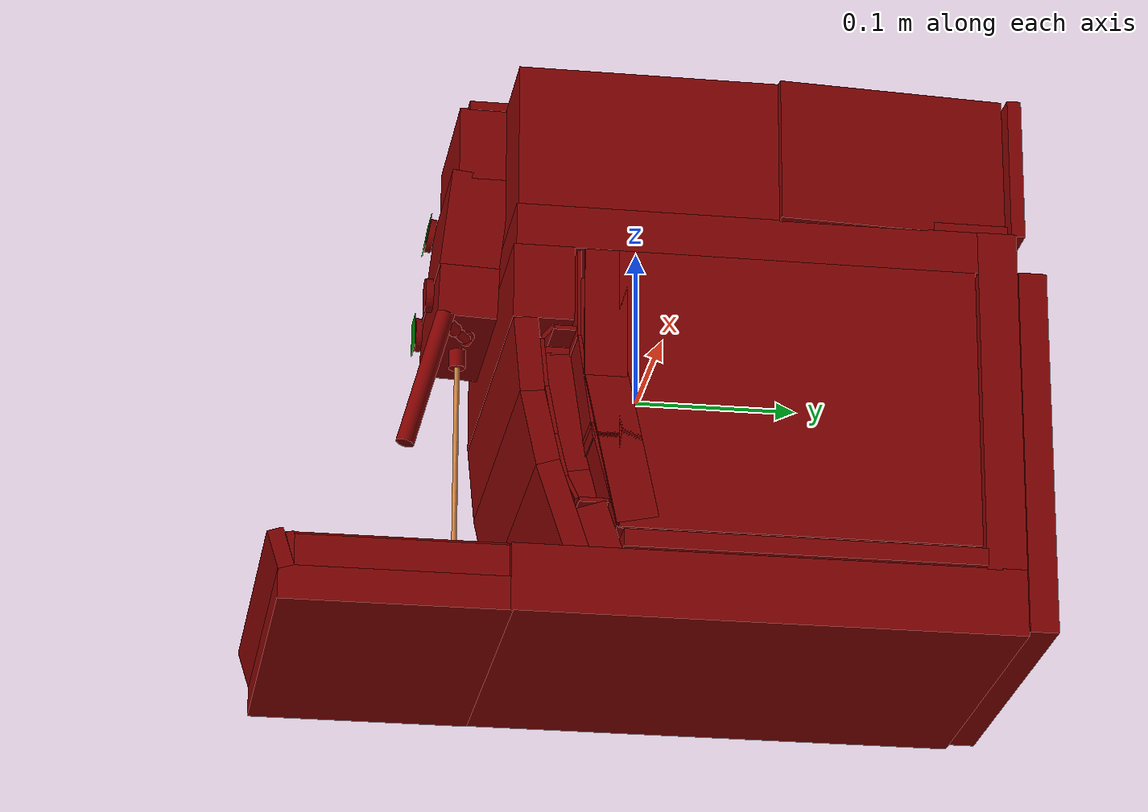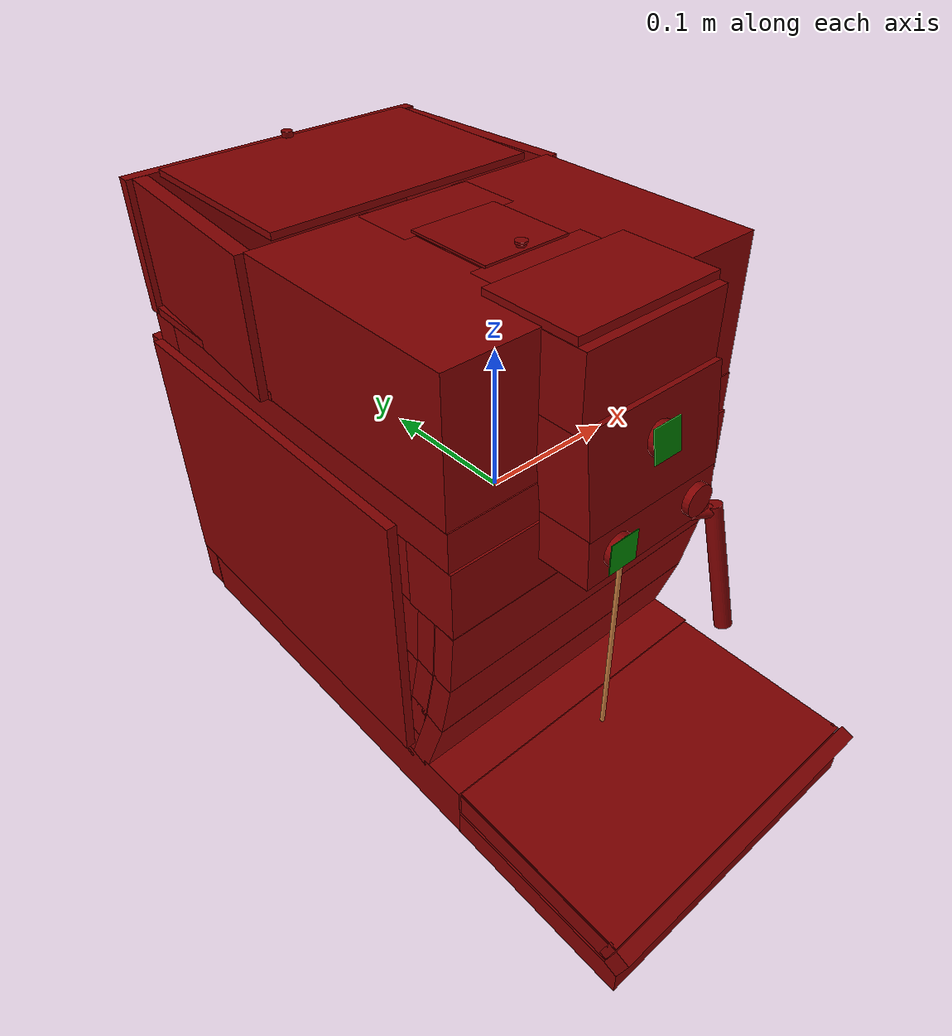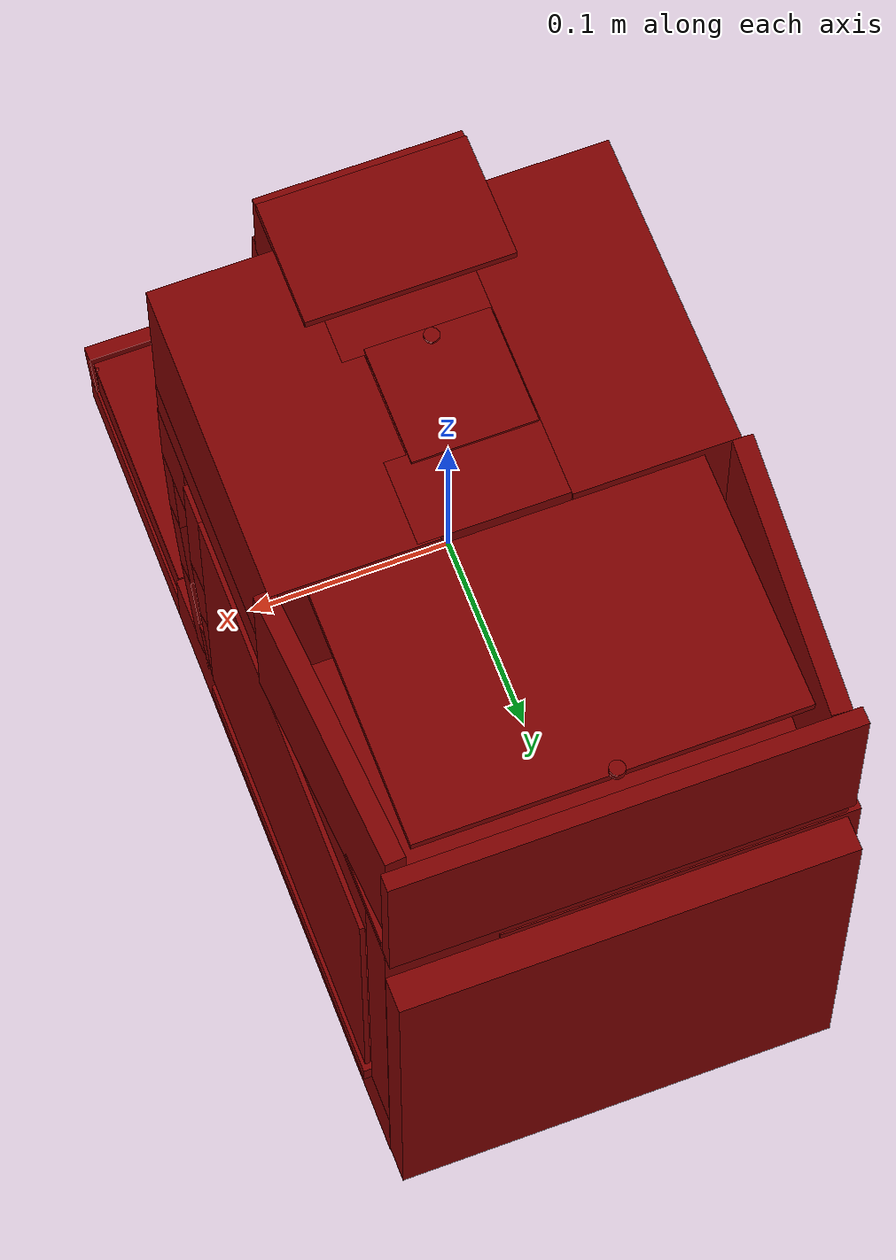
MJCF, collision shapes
<?xml version='1.0' encoding='UTF-8'?>
<mujoco model="model">
  <compiler angle="radian"/>
  <asset>
    <mesh file="visuals/Body001.obj" name="Body001_vis"/>
    <mesh file="visuals/Button001.obj" name="Button001_vis"/>
    <mesh file="visuals/Button002.obj" name="Button002_vis"/>
    <mesh file="visuals/Button003.obj" name="Button003_vis"/>
    <mesh file="visuals/Container001_Clear.obj" name="Container001_Clear_vis"/>
    <mesh file="visuals/Lever001.obj" name="Lever001_vis"/>
    <mesh file="visuals/Lid001.obj" name="Lid001_vis"/>
    <mesh file="visuals/Lid002.obj" name="Lid002_vis"/>
    <mesh file="visuals/Lid003.obj" name="Lid003_vis"/>
    <texture file="visuals/T_BC001.png" name="Body001_material" type="2d"/>
    <material name="Body001_material" rgba="1 1 1 1.0" texture="Body001_material" shininess="-1023.0" specular="0.3103448502657381"/>
    <texture file="visuals/T_BC001.png" name="Button001_material" type="2d"/>
    <material name="Button001_material" rgba="1 1 1 1.0" texture="Button001_material" shininess="-1023.0" specular="0.3103448502657381"/>
    <texture file="visuals/T_BC001.png" name="Button002_material" type="2d"/>
    <material name="Button002_material" rgba="1 1 1 1.0" texture="Button002_material" shininess="-1023.0" specular="0.3103448502657381"/>
    <texture file="visuals/T_BC001.png" name="Button003_material" type="2d"/>
    <material name="Button003_material" rgba="1 1 1 1.0" texture="Button003_material" shininess="-1023.0" specular="0.3103448502657381"/>
    <material name="Container001_Clear_material" rgba="0.5 0.5 0.5 0.10000000149011612" shininess="-1023.0" specular="0.3103448502657381"/>
    <texture file="visuals/T_BC001.png" name="Lever001_material" type="2d"/>
    <material name="Lever001_material" rgba="1 1 1 1.0" texture="Lever001_material" shininess="-1023.0" specular="0.3103448502657381"/>
    <texture file="visuals/T_BC001.png" name="Lid001_material" type="2d"/>
    <material name="Lid001_material" rgba="1 1 1 1.0" texture="Lid001_material" shininess="-1023.0" specular="0.3103448502657381"/>
    <texture file="visuals/T_BC001.png" name="Lid002_material" type="2d"/>
    <material name="Lid002_material" rgba="1 1 1 1.0" texture="Lid002_material" shininess="-1023.0" specular="0.3103448502657381"/>
    <texture file="visuals/T_BC001.png" name="Lid003_material" type="2d"/>
    <material name="Lid003_material" rgba="1 1 1 1.0" texture="Lid003_material" shininess="-1023.0" specular="0.3103448502657381"/>
  </asset>
  <default>
    <default class="visual">
      <geom conaffinity="0" contype="0" group="1" type="mesh"/>
    </default>
    <default class="collision">
      <geom group="0" rgba="0.5 0 0 0.5"/>
    </default>
    <default class="spawn">
      <geom group="0" rgba="1 1 1 0.5" contype="0" conaffinity="0"/>
      <site group="0" rgba="1 1 1 0.5"/>
    </default>
    <default class="region">
      <geom group="1" conaffinity="0" contype="0" rgba="0 1 0 0"/>
    </default>
  </default>
  <worldbody>
    <body>
      <body name="object">
        <geom class="collision" type="box" pos="-0.001246 -0.131342 0.105351" size="0.010432046838104725 0.010432046838104725 0.00023479762603528798" quat="0.7657781839370728 0.6431047916412354 0.0 0.0" name="start_button_1" rgba="0.0 0.5 0 0.5"/>
        <geom class="collision" type="box" pos="-0.031657 -0.135325 0.050375" size="0.010432046838104725 0.010432046838104725 0.00023871650046203285" quat="0.7071067094802856 0.7071068286895752 0.0 0.0" name="start_button_2" rgba="0.0 0.5 0 0.5"/>
        <site rgba="0 0 0 0" size="0.009999999776482582 0.009999999776482582" pos="-0.002287 -0.111417 -0.136497" name="receptacle_place_site"/>
        <site type="cylinder" rgba="0.8 0.5 0.25 1" size="0.0015930539229884744 0.08924613147974014" pos="-0.002133 -0.111189 -0.068851" name="coffee_liquid"/>
        <geom mesh="Body001_vis" type="mesh" solimp="0.998 0.998 0.001" solref="0.001 1" density="100" friction="0.95 0.3 0.1" class="visual" material="Body001_material"/>
        <geom class="collision" type="box" pos="-0.000000 0.063121 -0.157252" size="0.11195165663957596 0.1536671668291092 0.02068617008626461" quat="1.0 0.0 0.0 0.0"/>
        <geom class="collision" type="box" pos="-0.000000 -0.157323 -0.167830" size="0.11194975674152374 0.06829345226287842 0.010334345512092113" quat="1.0 0.0 0.0 0.0"/>
        <geom class="collision" type="box" pos="-0.000000 -0.224371 -0.147543" size="0.11195165663957596 0.011879979632794857 0.004888792522251606" quat="0.8053767085075378 -0.5927633047103882 -1.316199202782537e-16 -6.994547234390643e-24"/>
        <geom class="collision" type="box" pos="-0.000000 0.204685 -0.028745" size="0.11195165663957596 0.012152980081737041 0.10867776721715927" quat="1.0 0.0 0.0 0.0"/>
        <geom class="collision" type="box" pos="0.002009 0.083867 -0.131026" size="0.11396069079637527 0.10867775976657867 0.005318571347743273" quat="1.0 0.0 0.0 0.0"/>
        <geom class="collision" type="box" pos="0.000000 0.051547 0.066183" size="0.11195165663957596 0.14099763333797455 0.013451976701617241" quat="1.0 0.0 0.0 0.0"/>
        <geom class="collision" type="box" pos="0.000000 -0.072612 0.029596" size="0.11195165663957596 0.0183626189827919 0.023557720705866814" quat="1.0 0.0 0.0 0.0"/>
        <geom class="collision" type="box" pos="-0.000000 -0.081293 -0.017419" size="0.11195165663957596 0.02345963940024376 0.007367161102592945" quat="0.7399609088897705 -0.6726498603820801 -1.4895644801217288e-16 4.444539141957276e-19"/>
        <geom class="collision" type="box" pos="0.000000 -0.074349 -0.062909" size="0.11195165663957596 0.02345964126288891 0.007367161102592945" quat="0.7782642841339111 -0.627936840057373 -1.3905500343568453e-16 4.673307831080121e-19"/>
        <geom class="collision" type="box" pos="-0.000000 -0.060762 -0.112588" size="0.11195165663957596 0.02864706702530384 0.007367161102592945" quat="0.8100221753120422 -0.586399257183075 -1.2985674178920506e-16 4.862973624696053e-19"/>
        <geom class="collision" type="box" pos="-0.000000 -0.039556 -0.126241" size="0.11195165663957596 0.01639576442539692 0.010064381174743176" quat="0.812647819519043 -0.5827551484107971 -1.2904978408826773e-16 4.878807929571849e-19"/>
        <geom class="collision" type="box" pos="-0.030698 0.085286 -0.034274" size="0.08770933002233505 0.13229043781757355 0.09314877539873123" quat="1.0 0.0 0.0 0.0"/>
        <geom class="collision" type="box" pos="-0.026478 -0.065689 -0.016568" size="0.08547347784042358 0.02345963940024376 0.007367161102592945" quat="0.7399609088897705 -0.6726498603820801 -1.4895644801217288e-16 4.444539141957276e-19"/>
        <geom class="collision" type="box" pos="-0.026478 -0.058744 -0.062057" size="0.08547347784042358 0.02345964126288891 0.007367161102592945" quat="0.7782642841339111 -0.627936840057373 -1.3905500343568453e-16 4.673307831080121e-19"/>
        <geom class="collision" type="box" pos="-0.026478 -0.049484 -0.102841" size="0.08547347784042358 0.02345964126288891 0.007367161102592945" quat="0.7782642841339111 -0.627936840057373 -1.3905500343568453e-16 4.673307831080121e-19"/>
        <geom class="collision" type="box" pos="-0.026478 -0.051504 -0.015189" size="0.08547347784042358 0.02345963940024376 0.007367161102592945" quat="0.7399609088897705 -0.6726498603820801 -1.4895644801217288e-16 4.444539141957276e-19"/>
        <geom class="collision" type="box" pos="-0.026478 -0.044559 -0.060678" size="0.08547347784042358 0.02345964126288891 0.007367161102592945" quat="0.7782642841339111 -0.627936840057373 -1.3905500343568453e-16 4.673307831080121e-19"/>
        <geom class="collision" type="box" pos="-0.026478 -0.053206 0.030433" size="0.08547347784042358 0.02345963940024376 0.007367160636931658" quat="0.7027764320373535 -0.7114107608795166 -1.3989560422649562e-16 1.6461407041785034e-17"/>
        <geom class="collision" type="box" pos="0.071459 -0.007446 0.117448" size="0.04049147665500641 0.0812218189239502 0.05293311923742294" quat="1.0 0.0 0.0 0.0"/>
        <geom class="collision" type="box" pos="0.000000 -0.079108 0.171733" size="0.05102960392832756 0.03249482810497284 0.0028701755218207836" quat="1.0 0.0 0.0 0.0"/>
        <geom class="collision" type="box" pos="-0.000358 -0.101847 0.145904" size="0.051004067063331604 0.015679894015192986 0.02354324236512184" quat="1.0 0.0 0.0 0.0"/>
        <geom class="collision" type="box" pos="-0.000358 -0.106976 0.093557" size="0.051004067063331604 0.032320212572813034 0.018212758004665375" quat="0.6663897633552551 -0.7456035614013672 -1.484139631141259e-16 1.7188495491496695e-17"/>
        <geom class="collision" type="box" pos="-0.000358 -0.110586 0.046731" size="0.051004067063331604 0.01664959453046322 0.018212758004665375" quat="0.6930869817733765 -0.7208539843559265 -1.5432706041423877e-16 5.7490686254145216e-18"/>
        <geom class="collision" type="cylinder" pos="-0.002263 -0.111021 0.023067" size="0.005195016972720623 0.0056921616196632385" quat="1.0 0.0 0.0 0.0"/>
        <geom class="collision" type="box" pos="-0.000000 0.226130 -0.060059" size="0.11195136606693268 0.00878219399601221 0.11500246077775955" quat="1.0 0.0 0.0 0.0"/>
        <geom class="collision" type="box" pos="-0.071532 -0.007446 0.117448" size="0.04034026339650154 0.08122221380472183 0.05293339490890503" quat="1.0 0.0 0.0 0.0"/>
        <geom class="collision" type="box" pos="0.001347 0.051081 0.117448" size="0.040340274572372437 0.021578723564743996 0.05293341353535652" quat="1.0 0.0 0.0 0.0"/>
        <geom class="collision" type="box" pos="0.001347 -0.045498 0.117448" size="0.04034028947353363 0.021578731015324593 0.052933432161808014" quat="1.0 0.0 0.0 0.0"/>
        <geom class="collision" type="box" pos="0.000000 0.003001 0.152437" size="0.02961600571870804 0.02676309645175934 0.003558617550879717" quat="1.0 0.0 0.0 0.0"/>
        <geom class="collision" type="box" pos="-0.000130 0.218300 0.124463" size="0.11183004826307297 0.00431686919182539 0.04551549628376961" quat="1.0 0.0 0.0 0.0"/>
        <geom class="collision" type="box" pos="-0.107447 0.143685 0.124463" size="0.005043792072683573 0.07020445168018341 0.04551549628376961" quat="0.9993990063667297 0.0 -0.0 -0.034664370119571686"/>
        <geom class="collision" type="box" pos="0.108405 0.140536 0.124463" size="0.005043792072683573 0.07020445168018341 0.04551549628376961" quat="0.9993990063667297 0.0 0.0 0.03466436639428139"/>
        <geom class="collision" type="box" pos="-0.000130 0.141049 0.081965" size="0.11183004826307297 0.07070321589708328 0.0030179477762430906" quat="1.0 0.0 0.0 0.0"/>
        <body name="Button001">
          <joint axis="0.0 1.0 0.0" pos="0.031291 -0.131227 0.050375" limited="true" name="Button001_joint" range="0.0 0.003" type="slide" damping="1" frictionloss="1" armature=".01" stiffness="0.05" springref="-0.1"/>
          <geom mesh="Button001_vis" type="mesh" solimp="0.998 0.998 0.001" solref="0.001 1" density="100" friction="0.95 0.3 0.1" class="visual" material="Button001_material"/>
          <geom class="collision" type="cylinder" pos="0.031316 -0.133208 0.050375" size="0.010432046838104725 0.0023561641573905945" quat="0.7071067094802856 0.7071068286895752 0.0 0.0"/>
        </body>
        <body name="Button002">
          <joint axis="0.0 1.0 0.0" pos="-0.031663 -0.131108 0.050277" limited="true" name="Button002_joint" range="0.0 0.003" type="slide" damping="1" frictionloss="1" armature=".01" stiffness="0.05" springref="-0.1"/>
          <geom mesh="Button002_vis" type="mesh" solimp="0.998 0.998 0.001" solref="0.001 1" density="100" friction="0.95 0.3 0.1" class="visual" material="Button002_material"/>
          <geom class="collision" type="cylinder" pos="-0.031657 -0.132821 0.050375" size="0.010432046838104725 0.00196964293718338" quat="0.7071067094802856 0.7071068286895752 0.0 0.0"/>
        </body>
        <body name="Button003">
          <joint axis="0.0 0.9853023290634155 -0.17081961035728455" pos="-0.001004 -0.127252 0.104497" limited="true" name="Button003_joint" range="0.0 0.003" type="slide" damping="1" frictionloss="1" armature=".01" stiffness="0.05" springref="-0.1"/>
          <geom mesh="Button003_vis" type="mesh" solimp="0.998 0.998 0.001" solref="0.001 1" density="100" friction="0.95 0.3 0.1" class="visual" material="Button003_material"/>
          <geom class="collision" type="cylinder" pos="-0.001246 -0.128870 0.104917" size="0.010432046838104725 0.0019674296490848064" quat="0.7657781839370728 0.6431047916412354 0.0 0.0"/>
        </body>
        <body name="Container001_Clear">
          <joint axis="1.0 0.0 0.0" pos="0.092067 0.058380 -0.035897" limited="true" name="Container001_Clear_joint" range="0.0 0.2" type="slide" damping="1" frictionloss="1" armature=".01" stiffness="0.05"/>
          <geom mesh="Container001_Clear_vis" type="mesh" solimp="0.998 0.998 0.001" solref="0.001 1" density="100" friction="0.95 0.3 0.1" class="visual" material="Container001_Clear_material"/>
          <geom class="collision" type="box" pos="0.067472 0.081725 -0.034906" size="0.0012893963139504194 0.10880670696496964 0.08657684922218323" quat="1.0 0.0 0.0 0.0"/>
          <geom class="collision" type="box" pos="0.112971 0.081134 -0.036100" size="0.0012893963139504194 0.1088065505027771 0.08777087926864624" quat="1.0 0.0 0.0 0.0"/>
          <geom class="collision" type="box" pos="0.088389 0.189621 -0.034906" size="0.021932460367679596 0.0012893973616883159 0.08657684922218323" quat="1.0 0.0 0.0 0.0"/>
          <geom class="collision" type="box" pos="0.112971 -0.035661 0.010972" size="0.0012893963139504194 0.012768151238560677 0.040536943823099136" quat="1.0 0.0 0.0 0.0"/>
          <geom class="collision" type="box" pos="0.112971 -0.027680 -0.065220" size="0.0012893963139504194 0.012768151238560677 0.040536943823099136" quat="0.9948450922966003 0.10140614956617355 2.2516686763028417e-17 9.573317164694347e-25"/>
          <geom class="collision" type="box" pos="0.067119 -0.035661 0.011970" size="0.0012893963139504194 0.012768151238560677 0.040536943823099136" quat="1.0 0.0 0.0 0.0"/>
          <geom class="collision" type="box" pos="0.067119 -0.026088 -0.072950" size="0.0012893963139504194 0.012768151238560677 0.04842919856309891" quat="0.9948450922966003 0.10140614956617355 2.2516686763028417e-17 9.573317164694347e-25"/>
          <geom class="collision" type="box" pos="0.112971 -0.026211 -0.072349" size="0.0012893963139504194 0.012768151238560677 0.04781608283519745" quat="0.9948450922966003 0.10140614956617355 2.2516686763028417e-17 9.573317164694347e-25"/>
          <geom class="collision" type="box" pos="0.088389 -0.051341 0.023806" size="0.021932460367679596 0.0010894195875152946 0.028150122612714767" quat="1.0 0.0 0.0 0.0"/>
          <geom class="collision" type="box" pos="0.088389 -0.046316 -0.035464" size="0.0010894185397773981 0.021932460367679596 0.03273638337850571" quat="0.7053433060646057 0.04990704730153084 0.04990704357624054 -0.70534348487854"/>
          <geom class="collision" type="box" pos="0.088389 -0.035371 -0.089919" size="0.0010894185397773981 0.021932460367679596 0.03273638337850571" quat="0.701687216758728 0.08737853169441223 0.08737853914499283 -0.7016872763633728"/>
          <geom class="collision" type="box" pos="0.089396 0.081243 -0.121979" size="0.020589197054505348 0.1095348373055458 0.0003066382196266204" quat="1.0 0.0 0.0 0.0"/>
          <geom class="collision" type="box" pos="0.078049 0.130681 -0.076029" size="0.0091010220348835 0.018342208117246628 0.04625656083226204" quat="1.0 0.0 0.0 0.0"/>
          <geom class="collision" type="box" pos="0.077664 -0.055872 -0.039668" size="0.0012893963139504194 0.012768150307238102 0.03808744251728058" quat="0.9969019889831543 0.07865401357412338 1.7464712604724077e-17 -5.921095291280288e-24"/>
          <geom class="collision" type="box" pos="0.077664 -0.061166 -0.000015" size="0.0012893963139504194 0.010859214700758457 0.003424856113269925" quat="0.9990853071212769 0.04276217520236969 9.495108644183923e-18 -1.11250742100867e-23"/>
          <geom class="collision" type="box" pos="0.077664 -0.047794 -0.088281" size="0.0012893963139504194 0.010859215632081032 0.01135159656405449" quat="0.9964436888694763 0.08426135778427124 1.8709778245293994e-17 -1.0946332528459912e-23"/>
          <geom class="collision" type="box" pos="0.077664 -0.041738 -0.102488" size="0.0012893963139504194 0.010859215632081032 0.0034083090722560883" quat="0.9999037981033325 -0.013872681185603142 -3.080352979132399e-18 -6.3957189769328464e-24"/>
          <geom class="collision" type="box" pos="0.077664 -0.041738 -0.099255" size="0.0012893963139504194 0.010859215632081032 0.0034083090722560883" quat="0.9999037981033325 -0.013872681185603142 -3.080352979132399e-18 -6.3957189769328464e-24"/>
          <geom class="collision" type="box" pos="0.091225 -0.059411 0.002931" size="0.015479560010135174 0.007000826299190521 0.0013459905749186873" quat="1.0 0.0 0.0 0.0"/>
          <geom class="collision" type="box" pos="0.091225 -0.059411 0.002931" size="0.015479560010135174 0.007000826299190521 0.0013459891779348254" quat="1.0 0.0 0.0 0.0"/>
          <geom class="collision" type="box" pos="0.091225 -0.069446 -0.000597" size="0.0012893963139504194 0.005344013683497906 0.0154795590788126" quat="0.6386833190917969 0.3034527599811554 0.6386833786964417 0.3034527599811554"/>
          <geom class="collision" type="box" pos="0.091225 -0.071556 -0.020060" size="0.0012893963139504194 0.015372076071798801 0.0154795590788126" quat="0.4742617607116699 0.5244766473770142 0.4742617905139923 0.5244766473770142"/>
          <geom class="collision" type="box" pos="0.091225 -0.066937 -0.050346" size="0.0012893963139504194 0.015372076071798801 0.0154795590788126" quat="0.4516051411628723 0.5441073179244995 0.4516051709651947 0.5441073179244995"/>
          <geom class="collision" type="box" pos="0.091225 -0.060724 -0.080006" size="0.0012893963139504194 0.015372078865766525 0.0154795590788126" quat="0.4372918903827667 0.5556758642196655 0.4372921884059906 0.5556758642196655"/>
          <geom class="collision" type="box" pos="0.091225 -0.040600 -0.105410" size="0.015479481779038906 0.009639757685363293 0.0013706699246540666" quat="1.0 0.0 0.0 0.0"/>
          <geom class="collision" type="box" pos="0.091225 -0.054877 -0.098342" size="0.001289396546781063 0.00748261995613575 0.0154795590788126" quat="0.3734549582004547 0.6004418730735779 0.3734574615955353 0.6004418730735779"/>
        </body>
        <body name="Lever001">
          <joint axis="0.0 0.0 1.0" pos="0.024958 -0.106492 -0.011968" limited="true" name="Lever001_joint" range="-0.5235987755982988 0.6981317007977318" type="hinge" damping="1" frictionloss="1" armature=".01" stiffness="0.01" springref="-0.1"/>
          <geom mesh="Lever001_vis" type="mesh" solimp="0.998 0.998 0.001" solref="0.001 1" density="100" friction="0.95 0.3 0.1" class="visual" material="Lever001_material"/>
          <geom class="collision" type="cylinder" pos="0.028484 -0.108254 0.024603" size="0.003279789350926876 0.003593653440475464" quat="0.31129348278045654 -0.35401102900505066 0.0707671195268631 0.8790702819824219"/>
          <geom class="collision" type="cylinder" pos="0.038665 -0.114361 0.023019" size="0.003279789350926876 0.008309883996844292" quat="0.42010000348091125 -0.7000372409820557 -0.05817507952451706 0.5745254755020142"/>
          <geom class="collision" type="cylinder" pos="0.052180 -0.122302 0.022604" size="0.004313711076974869 0.008277508430182934" quat="0.42010000348091125 -0.7000372409820557 -0.05817507952451706 0.5745254755020142"/>
          <geom class="collision" type="cylinder" pos="0.061374 -0.137319 -0.016422" size="0.0056446935050189495 0.04387937858700752" quat="0.5790894627571106 -0.07702662795782089 0.10727851092815399 0.8044958710670471"/>
        </body>
        <body name="Lid001">
          <joint axis="0.0 0.0 1.0" pos="-0.000143 -0.159453 -0.146869" limited="true" name="Lid001_joint" range="0.0 0.04" type="slide" damping="1" frictionloss="1" armature=".01" stiffness="0.05" springref="-10"/>
          <geom mesh="Lid001_vis" type="mesh" solimp="0.998 0.998 0.001" solref="0.001 1" density="100" friction="0.95 0.3 0.1" class="visual" material="Lid001_material"/>
          <geom class="collision" type="box" pos="-0.110147 -0.153783 -0.147440" size="0.0007132753380574286 0.06260626763105392 0.009638038463890553" quat="1.0 0.0 0.0 0.0"/>
          <geom class="collision" type="box" pos="0.109798 -0.153783 -0.147440" size="0.0007132751052267849 0.06260624527931213 0.009638034738600254" quat="1.0 0.0 0.0 0.0"/>
          <geom class="collision" type="box" pos="0.000071 -0.156432 -0.137445" size="0.1103711649775505 0.06525544077157974 0.000713295885361731" quat="1.0 0.0 0.0 0.0"/>
          <geom class="collision" type="box" pos="-0.110147 -0.216715 -0.146098" size="0.0007132748141884804 0.0024728174321353436 0.009638032875955105" quat="0.9899290204048157 0.14156463742256165 -3.1433663987848e-17 -5.754917402860503e-24"/>
          <geom class="collision" type="box" pos="0.109777 -0.216715 -0.146098" size="0.0007132748141884804 0.0024728174321353436 0.009638032875955105" quat="0.9899290204048157 0.14156463742256165 -3.1433663987848e-17 -5.754917402860503e-24"/>
        </body>
        <body name="Lid002">
          <joint axis="-1.0 0.0 0.0" pos="0.000000 0.034644 0.171334" limited="true" name="Lid002_joint" range="0.0 1.5707963267948966" type="hinge" damping="1" frictionloss="1" armature=".01" stiffness="0.05"/>
          <geom mesh="Lid002_vis" type="mesh" solimp="0.998 0.998 0.001" solref="0.001 1" density="100" friction="0.95 0.3 0.1" class="visual" material="Lid002_material"/>
          <geom class="collision" type="cylinder" pos="-0.000073 -0.020658 0.172969" size="0.0028926830273121595 0.000971427361946553" quat="1.0 0.0 0.0 0.0"/>
          <geom class="collision" type="cylinder" pos="-0.000073 -0.020658 0.174628" size="0.003775096731260419 0.0007055872702039778" quat="1.0 0.0 0.0 0.0"/>
          <geom class="collision" type="box" pos="0.000000 0.004278 0.171288" size="0.030378228053450584 0.030378228053450584 0.000746456382330507" quat="1.0 0.0 0.0 0.0"/>
        </body>
        <body name="Lid003">
          <joint axis="1.0 0.0 0.0" pos="0.002555 0.075484 0.170151" limited="true" name="Lid003_joint" range="0.0 1.5707963267948966" type="hinge" damping="1" frictionloss="1" armature=".01" stiffness="0.05"/>
          <geom mesh="Lid003_vis" type="mesh" solimp="0.998 0.998 0.001" solref="0.001 1" density="100" friction="0.95 0.3 0.1" class="visual" material="Lid003_material"/>
          <geom class="collision" type="box" pos="0.001639 0.142684 0.171898" size="0.09382523596286774 0.06474100053310394 0.002249284880235791" quat="1.0 0.0 0.0 0.0"/>
          <geom class="collision" type="cylinder" pos="-0.000073 0.206511 0.175967" size="0.003775096731260419 0.0020452539902180433" quat="1.0 0.0 0.0 0.0"/>
        </body>
        <geom class="region" name="reg_main" type="box" pos="0.0 0.0 -0.0012150000000000077" size="0.118166 0.233229 0.17663600000000002"/>
      </body>
    </body>
  </worldbody>
  <actuator>
    <motor name="Button001_joint_actuator" joint="Button001_joint" gear="0.5"/>
    <motor name="Button002_joint_actuator" joint="Button002_joint" gear="0.5"/>
    <motor name="Button003_joint_actuator" joint="Button003_joint" gear="0.5"/>
    <motor name="Container001_Clear_joint_actuator" joint="Container001_Clear_joint" gear="10"/>
    <motor name="Lever001_joint_actuator" joint="Lever001_joint" gear="10"/>
    <motor name="Lid001_joint_actuator" joint="Lid001_joint" gear="10"/>
    <motor name="Lid002_joint_actuator" joint="Lid002_joint" gear="10"/>
    <motor name="Lid003_joint_actuator" joint="Lid003_joint" gear="10"/>
  </actuator>
</mujoco>
